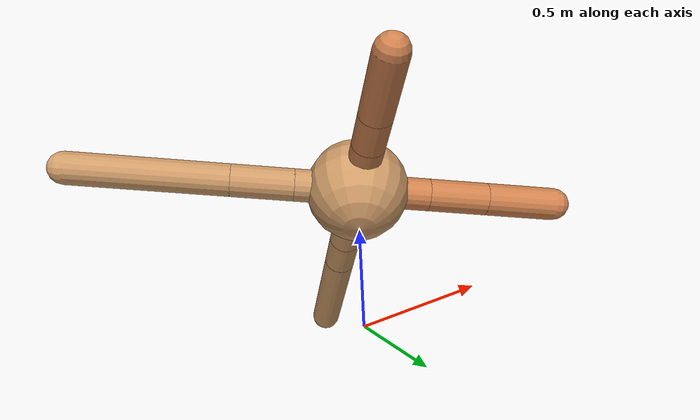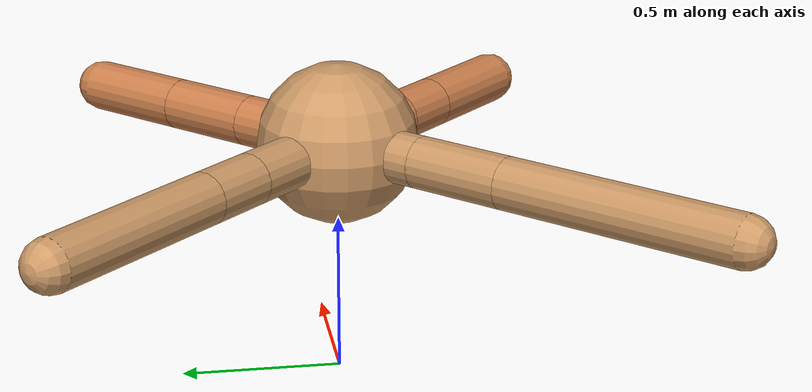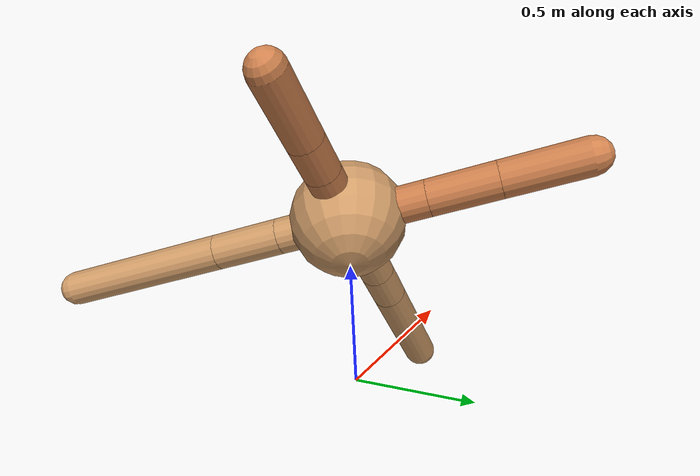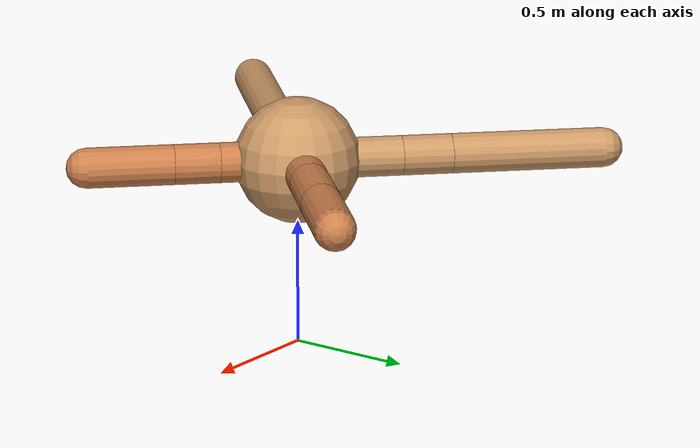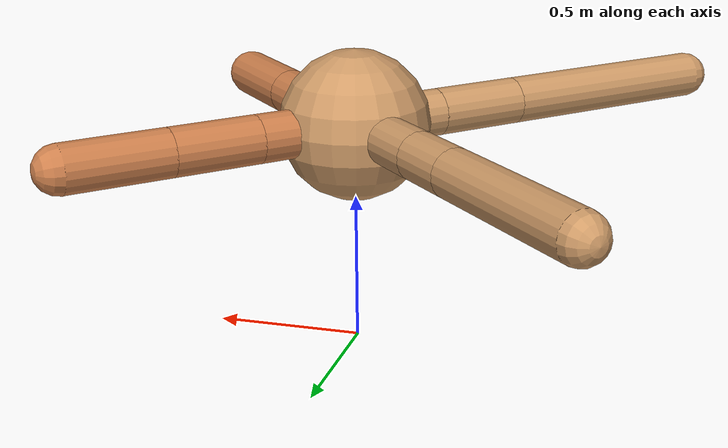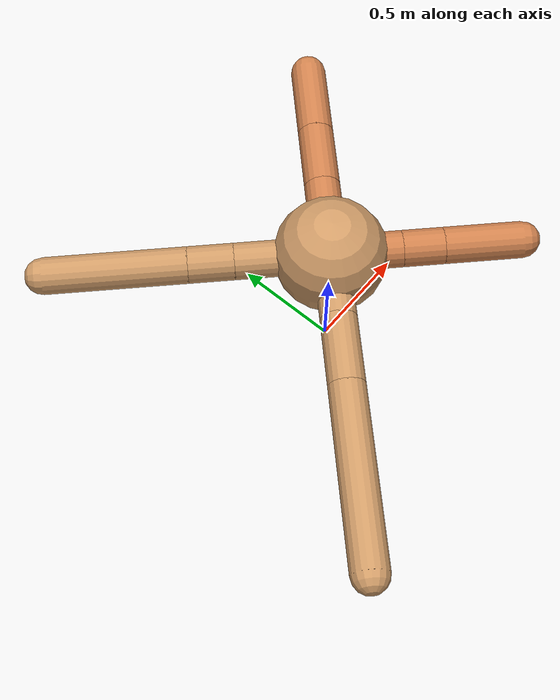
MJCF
<mujoco model="ant">
  <compiler angle="degree" coordinate="local" inertiafromgeom="true" />
  <option integrator="RK4" timestep="0.01" />
  <custom>
    <numeric data="0.0 0.0 0.55 1.0 0.0 0.0 0.0 0.0 1.0 0.0 -1.0 0.0 -1.0 0.0 1.0" name="init_qpos" />
  </custom>
  <default>
    <joint armature="1" damping="1" limited="true" />
    <geom conaffinity="0" condim="3" density="5.0" friction="1.5 0.1 0.1" margin="0.01" rgba="0.8 0.6 0.4 1" />
  </default>
  <worldbody>
    <body name="torso" pos="0 0 0.75">
      <geom name="torso_geom" pos="0 0 0" size="0.25" type="sphere" />

      <body name="front_left_leg" pos="0 0 0">
        <geom fromto="0.0 0.0 0.0 0.2476669549415482 0.2476669549415482 0.0" name="aux_1_geom" size="0.08" type="capsule" rgba=".8 .5 .3 1" />
        <body name="aux_1" pos="0.2476669549415482 0.2476669549415482 0.0">
          <joint axis="0 0 1" name="hip_1" pos="0.0 0.0 0.0" range="-40 40" type="hinge" />
          <geom fromto="0.0 0.0 0.0 0.20545264008309383 0.20545264008309383 0.0" name="left_leg_geom" size="0.08" type="capsule" rgba=".8 .5 .3 1" />
          <body pos="0.20545264008309383 0.20545264008309383 0.0" name="front_left_foot">
            <joint axis="-1 1 0" name="ankle_1" pos="0.0 0.0 0.0" range="30 100" type="hinge" />
            <geom fromto="0.0 0.0 0.0 0.24410782289569163 0.24410782289569163 0.0" name="left_ankle_geom" size="0.08" type="capsule" rgba=".8 .5 .3 1" />
          </body>
        </body>
      </body>
      <body name="front_right_leg" pos="0 0 0">
        <geom fromto="0.0 0.0 0.0 -0.29356442710745334 0.29356442710745334 0.0" name="aux_2_geom" size="0.08" type="capsule" />
        <body name="aux_2" pos="-0.29356442710745334 0.29356442710745334 0.0">
          <joint axis="0 0 1" name="hip_2" pos="0.0 0.0 0.0" range="-40 40" type="hinge" />
          <geom fromto="0.0 0.0 0.0 -0.14083949064236645 0.14083949064236645 0.0" name="right_leg_geom" size="0.08" type="capsule" />
          <body pos="-0.14083949064236645 0.14083949064236645 0.0" name="front_right_foot">
            <joint axis="1 1 0" name="ankle_2" pos="0.0 0.0 0.0" range="-100 -30" type="hinge" />
            <geom fromto="0.0 0.0 0.0 -0.4359559077998813 0.4359559077998813 0.0" name="right_ankle_geom" size="0.08" type="capsule" />
          </body>
        </body>
      </body>
      <body name="left_back_leg" pos="0 0 0">
        <geom fromto="0.0 0.0 0.0 -0.22034963306526062 -0.22034963306526062 0.0" name="aux_3_geom" size="0.08" type="capsule" />
        <body name="aux_3" pos="-0.22034963306526062 -0.22034963306526062 0.0">
          <joint axis="0 0 1" name="hip_3" pos="0.0 0.0 0.0" range="-40 40" type="hinge" />
          <geom fromto="0.0 0.0 0.0 -0.21600532632296138 -0.21600532632296138 0.0" name="back_leg_geom" size="0.08" type="capsule" />
          <body pos="-0.21600532632296138 -0.21600532632296138 0.0" name="left_back_foot">
            <joint axis="-1 1 0" name="ankle_3" pos="0.0 0.0 0.0" range="-100 -30" type="hinge" />
            <geom fromto="0.0 0.0 0.0 -0.5475083660704891 -0.5475083660704891 0.0" name="third_ankle_geom" size="0.08" type="capsule" />
          </body>
        </body>
      </body>
      <body name="right_back_leg" pos="0 0 0">
        <geom fromto="0.0 0.0 0.0 0.21815773206551559 -0.21815773206551559 0.0" name="aux_4_geom" size="0.08" type="capsule" rgba=".8 .5 .3 1" />
        <body name="aux_4" pos="0.21815773206551559 -0.21815773206551559 0.0">
          <joint axis="0 0 1" name="hip_4" pos="0.0 0.0 0.0" range="-40 40" type="hinge" />
          <geom fromto="0.0 0.0 0.0 0.12738711063734418 -0.12738711063734418 0.0" name="rightback_leg_geom" size="0.08" type="capsule" rgba=".8 .5 .3 1" />
          <body pos="0.12738711063734418 -0.12738711063734418 0.0" name="right_back_foot">
            <joint axis="1 1 0" name="ankle_4" pos="0.0 0.0 0.0" range="30 100" type="hinge" />
            <geom fromto="0.0 0.0 0.0 0.2420588159144872 -0.2420588159144872 0.0" name="fourth_ankle_geom" size="0.08" type="capsule" rgba=".8 .5 .3 1" />
          </body>
        </body>
      </body>
    </body>
  </worldbody>
  <actuator>
    <motor ctrllimited="true" ctrlrange="-1.0 1.0" joint="hip_4" gear="150" />
    <motor ctrllimited="true" ctrlrange="-1.0 1.0" joint="ankle_4" gear="150" />
    <motor ctrllimited="true" ctrlrange="-1.0 1.0" joint="hip_1" gear="150" />
    <motor ctrllimited="true" ctrlrange="-1.0 1.0" joint="ankle_1" gear="150" />
    <motor ctrllimited="true" ctrlrange="-1.0 1.0" joint="hip_2" gear="150" />
    <motor ctrllimited="true" ctrlrange="-1.0 1.0" joint="ankle_2" gear="150" />
    <motor ctrllimited="true" ctrlrange="-1.0 1.0" joint="hip_3" gear="150" />
    <motor ctrllimited="true" ctrlrange="-1.0 1.0" joint="ankle_3" gear="150" />
  </actuator>
</mujoco>
